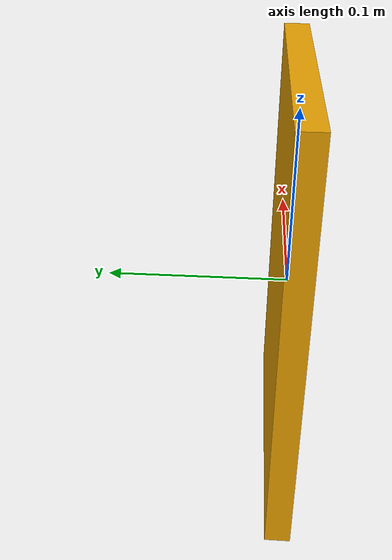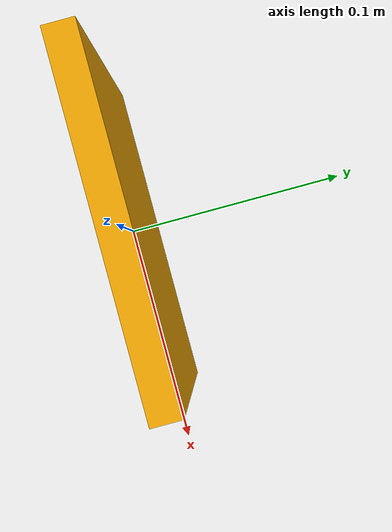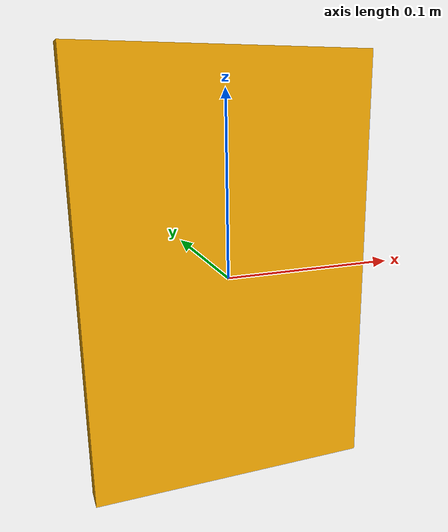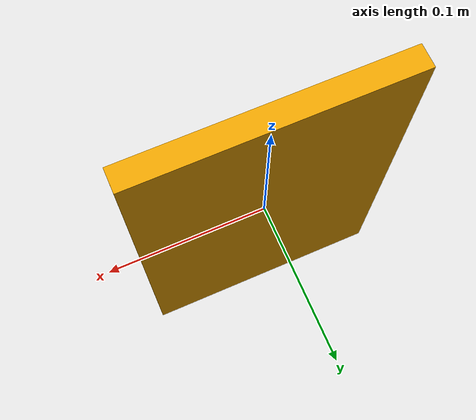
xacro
<?xml version="1.0" ?>
<robot name="book_knuth_40"
       xmlns:controller="http://playerstage.sourceforge.net/gazebo/xmlschema/#controller"
       xmlns:interface="http://playerstage.sourceforge.net/gazebo/xmlschema/#interface"
       xmlns:sensor="http://playerstage.sourceforge.net/gazebo/xmlschema/#sensor"
       xmlns:xacro="http://www.ros.org/wiki/xacro">

  <!--
       ROS URDF model of "D.E.Knuth: AOCP, Volume 4, Fascile 0", 2008.
       Origin and center of mass are at the center of the mesh.

       (C) 2019 fnh, hendrich@informatik.uni-hamburg.de
  -->
  <!-- main body with Collada mesh for both visual and collision -->

  <xacro:include filename="$(find tams_books_world)/urdf/book_cube.xacro" />

  <xacro:book_cube
      name="book_knuth_40"
      weight="0.400"
      mesh="book-knuth-40.dae"
      xsize="0.161"
      ysize="0.014"
      zsize="0.240"
  />

</robot>

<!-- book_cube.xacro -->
<robot name="book_cube"
       xmlns:controller="http://playerstage.sourceforge.net/gazebo/xmlschema/#controller"
       xmlns:interface="http://playerstage.sourceforge.net/gazebo/xmlschema/#interface"
       xmlns:sensor="http://playerstage.sourceforge.net/gazebo/xmlschema/#sensor"
       xmlns:xacro="http://www.ros.org/wiki/xacro">
  <!--
       basic ROS xacro macro for a "book": a cube with textures.
       Origin and center of mass are at the center of the mesh.

       (C) 2019 fnh, hendrich@informatik.uni-hamburg.de
  -->

<xacro:macro name="book_cube" params="name weight mesh xsize ysize zsize">

  <!-- main body with Collada mesh for both visual and collision -->
  <link name="${name}_link">
    <inertial>
      <mass value="${weight}"/>
      <origin rpy="0 0 0" xyz="0 0 0"/>
      <inertia ixx="${weight/12*(ysize*ysize+zsize*zsize)}"
               iyy="${weight/12*(xsize*xsize+zsize*zsize)}"
               izz="${weight/12*(xsize*xsize+ysize*ysize)}"
               ixy="0" ixz="0" iyz="0" />
    </inertial>
    <collision>
      <origin rpy="0 0 0" xyz="0 0 0"/>
      <geometry>
        <box size="${xsize} ${ysize} ${zsize}" rpy="0 0 0" />
      </geometry>
    </collision>
    <visual>
      <origin rpy="0 0 0" xyz="0 0 0"/>
      <geometry>
        <mesh filename="package://tams_books_world/meshes/${mesh}" scale="${0.5*xsize} ${0.5*ysize} ${0.5*zsize}" />
      </geometry>
    </visual>
  </link>
  <gazebo reference="${name}_link">
    <!-- material/texture definition for Gazebo -->
    <turnGravityOff>false</turnGravityOff>
    <selfCollide>true</selfCollide>
    <mu1>1</mu1>
    <mu2>1</mu2>
    <kp>10000000.0</kp>
    <kd>10.0</kd>
  </gazebo>
</xacro:macro>

</robot>
